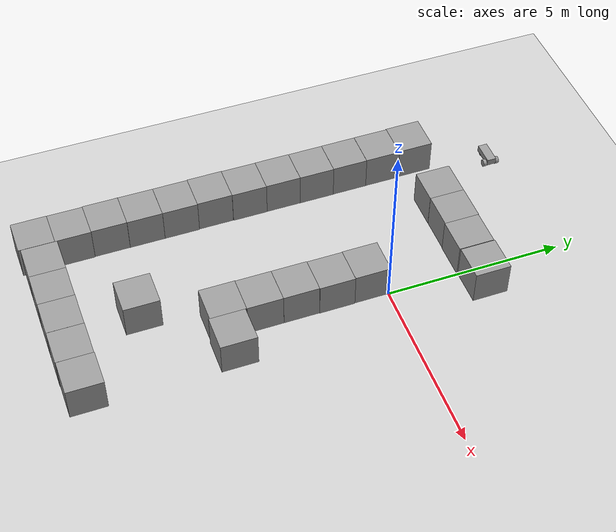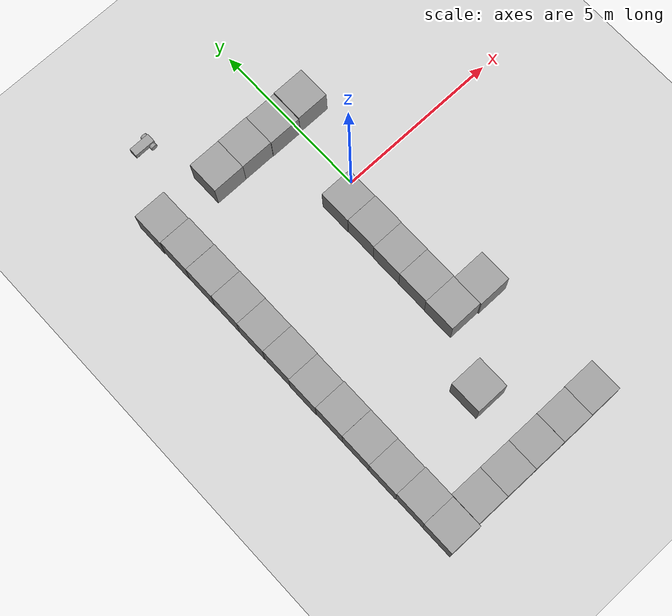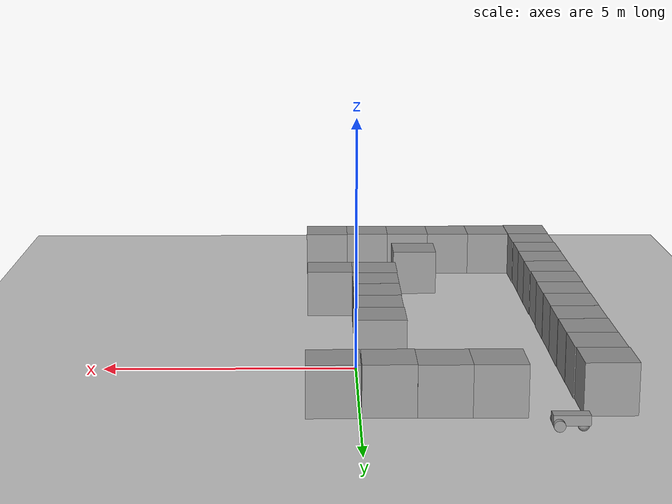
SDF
<sdf version="1.6">
 <world name="default">
  <model name="ground_plane">
   <static>1</static>
   <link name="link">
    <collision name="collision">
     <geometry><plane><normal>0 0 1</normal><size>100 100</size></plane></geometry>
     <surface>
      <contact><collide_bitmask>65535</collide_bitmask></contact>
      <friction><ode><mu>100</mu><mu2>50</mu2></ode></friction>
     </surface>
    </collision>
    <visual name="visual">
     <cast_shadows>0</cast_shadows>
     <geometry><plane><normal>0 0 1</normal><size>100 100</size></plane></geometry>
     <material>
      <script><uri>file://media/materials/scripts/gazebo.material</uri><name>Gazebo/Grey</name></script>
     </material>
    </visual>
   </link>
  </model>
  <model name="unit_box">
   <pose>-0.514009 -0.468031 0.499995 1e-05 -0 0.000845</pose>
   <link name="link">
    <inertial>
     <mass>1</mass>
     <inertia>
      <ixx>0.166667</ixx>
      <ixy>0</ixy>
      <ixz>0</ixz>
      <iyy>0.166667</iyy>
      <iyz>0</iyz>
      <izz>0.166667</izz>
     </inertia>
    </inertial>
    <collision name="collision"><geometry><box><size>1 1 1</size></box></geometry></collision>
    <visual name="visual">
     <geometry><box><size>1 1 1</size></box></geometry>
     <material>
      <script><name>Gazebo/Grey</name><uri>file://media/materials/scripts/gazebo.material</uri></script>
     </material>
    </visual>
   </link>
  </model>
  <model name="unit_box_0">
   <pose>-0.501649 -1.46826 0.499995 1e-05 -0 0.000484</pose>
   <link name="link">
    <inertial>
     <mass>1</mass>
     <inertia>
      <ixx>0.166667</ixx>
      <ixy>0</ixy>
      <ixz>0</ixz>
      <iyy>0.166667</iyy>
      <iyz>0</iyz>
      <izz>0.166667</izz>
     </inertia>
    </inertial>
    <collision name="collision"><geometry><box><size>1 1 1</size></box></geometry></collision>
    <visual name="visual">
     <geometry><box><size>1 1 1</size></box></geometry>
     <material>
      <script><name>Gazebo/Grey</name><uri>file://media/materials/scripts/gazebo.material</uri></script>
     </material>
    </visual>
   </link>
  </model>
  <model name="unit_box_1">
   <pose>-0.513723 -2.46828 0.499995 0 1e-05 0.000475</pose>
   <link name="link">
    <inertial>
     <mass>1</mass>
     <inertia>
      <ixx>0.166667</ixx>
      <ixy>0</ixy>
      <ixz>0</ixz>
      <iyy>0.166667</iyy>
      <iyz>0</iyz>
      <izz>0.166667</izz>
     </inertia>
    </inertial>
    <collision name="collision"><geometry><box><size>1 1 1</size></box></geometry></collision>
    <visual name="visual">
     <geometry><box><size>1 1 1</size></box></geometry>
     <material>
      <script><name>Gazebo/Grey</name><uri>file://media/materials/scripts/gazebo.material</uri></script>
     </material>
    </visual>
   </link>
  </model>
  <model name="unit_box_2">
   <pose>-0.514014 -3.46855 0.499995 -0 1e-05 0.000243</pose>
   <link name="link">
    <inertial>
     <mass>1</mass>
     <inertia>
      <ixx>0.166667</ixx>
      <ixy>0</ixy>
      <ixz>0</ixz>
      <iyy>0.166667</iyy>
      <iyz>0</iyz>
      <izz>0.166667</izz>
     </inertia>
    </inertial>
    <collision name="collision"><geometry><box><size>1 1 1</size></box></geometry></collision>
    <visual name="visual">
     <geometry><box><size>1 1 1</size></box></geometry>
     <material>
      <script><name>Gazebo/Grey</name><uri>file://media/materials/scripts/gazebo.material</uri></script>
     </material>
    </visual>
   </link>
  </model>
  <model name="unit_box_3">
   <pose>-0.5251 -4.46859 0.499995 0 1e-05 0.000164</pose>
   <link name="link">
    <inertial>
     <mass>1</mass>
     <inertia>
      <ixx>0.166667</ixx>
      <ixy>0</ixy>
      <ixz>0</ixz>
      <iyy>0.166667</iyy>
      <iyz>0</iyz>
      <izz>0.166667</izz>
     </inertia>
    </inertial>
    <collision name="collision"><geometry><box><size>1 1 1</size></box></geometry></collision>
    <visual name="visual">
     <geometry><box><size>1 1 1</size></box></geometry>
     <material>
      <script><name>Gazebo/Grey</name><uri>file://media/materials/scripts/gazebo.material</uri></script>
     </material>
    </visual>
   </link>
  </model>
  <model name="unit_box_11">
   <pose>0.516335 -8.49479 0.499995 0 1e-05 -0.000625</pose>
   <link name="link">
    <inertial>
     <mass>1</mass>
     <inertia>
      <ixx>0.166667</ixx>
      <ixy>0</ixy>
      <ixz>0</ixz>
      <iyy>0.166667</iyy>
      <iyz>0</iyz>
      <izz>0.166667</izz>
     </inertia>
    </inertial>
    <collision name="collision"><geometry><box><size>1 1 1</size></box></geometry></collision>
    <visual name="visual">
     <geometry><box><size>1 1 1</size></box></geometry>
     <material>
      <script><name>Gazebo/Grey</name><uri>file://media/materials/scripts/gazebo.material</uri></script>
     </material>
    </visual>
   </link>
  </model>
  <model name="unit_box_12">
   <pose>-0.483823 -8.50416 0.499985 0 -5e-06 -0.000899</pose>
   <link name="link">
    <inertial>
     <mass>1</mass>
     <inertia>
      <ixx>0.166667</ixx>
      <ixy>0</ixy>
      <ixz>0</ixz>
      <iyy>0.166667</iyy>
      <iyz>0</iyz>
      <izz>0.166667</izz>
     </inertia>
    </inertial>
    <collision name="collision"><geometry><box><size>1 1 1</size></box></geometry></collision>
    <visual name="visual">
     <geometry><box><size>1 1 1</size></box></geometry>
     <material>
      <script><name>Gazebo/Grey</name><uri>file://media/materials/scripts/gazebo.material</uri></script>
     </material>
    </visual>
   </link>
  </model>
  <model name="unit_box_13">
   <pose>-1.48461 -8.50511 0.499995 1e-05 -0 -0.002459</pose>
   <link name="link">
    <inertial>
     <mass>1</mass>
     <inertia>
      <ixx>0.166667</ixx>
      <ixy>0</ixy>
      <ixz>0</ixz>
      <iyy>0.166667</iyy>
      <iyz>0</iyz>
      <izz>0.166667</izz>
     </inertia>
    </inertial>
    <collision name="collision"><geometry><box><size>1 1 1</size></box></geometry></collision>
    <visual name="visual">
     <geometry><box><size>1 1 1</size></box></geometry>
     <material>
      <script><name>Gazebo/Grey</name><uri>file://media/materials/scripts/gazebo.material</uri></script>
     </material>
    </visual>
   </link>
  </model>
  <model name="unit_box_14">
   <pose>-2.48462 -8.50514 0.49999 0 -0 -0.002459</pose>
   <link name="link">
    <inertial>
     <mass>1</mass>
     <inertia>
      <ixx>0.166667</ixx>
      <ixy>0</ixy>
      <ixz>0</ixz>
      <iyy>0.166667</iyy>
      <iyz>0</iyz>
      <izz>0.166667</izz>
     </inertia>
    </inertial>
    <collision name="collision"><geometry><box><size>1 1 1</size></box></geometry></collision>
    <visual name="visual">
     <geometry><box><size>1 1 1</size></box></geometry>
     <material>
      <script><name>Gazebo/Grey</name><uri>file://media/materials/scripts/gazebo.material</uri></script>
     </material>
    </visual>
   </link>
  </model>
  <model name="unit_box_15">
   <pose>-3.48462 -8.50266 0.499995 0 -9e-06 -0.002459</pose>
   <link name="link">
    <inertial>
     <mass>1</mass>
     <inertia>
      <ixx>0.166667</ixx>
      <ixy>0</ixy>
      <ixz>0</ixz>
      <iyy>0.166667</iyy>
      <iyz>0</iyz>
      <izz>0.166667</izz>
     </inertia>
    </inertial>
    <collision name="collision"><geometry><box><size>1 1 1</size></box></geometry></collision>
    <visual name="visual">
     <geometry><box><size>1 1 1</size></box></geometry>
     <material>
      <script><name>Gazebo/Grey</name><uri>file://media/materials/scripts/gazebo.material</uri></script>
     </material>
    </visual>
   </link>
  </model>
  <model name="unit_box_16">
   <pose>-4.48864 -8.56824 0.5 0 -0 0.000511</pose>
   <link name="link">
    <inertial>
     <mass>1</mass>
     <inertia>
      <ixx>0.166667</ixx>
      <ixy>0</ixy>
      <ixz>0</ixz>
      <iyy>0.166667</iyy>
      <iyz>0</iyz>
      <izz>0.166667</izz>
     </inertia>
    </inertial>
    <collision name="collision"><geometry><box><size>1 1 1</size></box></geometry></collision>
    <visual name="visual">
     <geometry><box><size>1 1 1</size></box></geometry>
     <material>
      <script><name>Gazebo/Grey</name><uri>file://media/materials/scripts/gazebo.material</uri></script>
     </material>
    </visual>
   </link>
  </model>
  <model name="unit_box_17">
   <pose>-4.48359 -7.56803 0.499995 0 1e-05 9.7e-05</pose>
   <link name="link">
    <inertial>
     <mass>1</mass>
     <inertia>
      <ixx>0.166667</ixx>
      <ixy>0</ixy>
      <ixz>0</ixz>
      <iyy>0.166667</iyy>
      <iyz>0</iyz>
      <izz>0.166667</izz>
     </inertia>
    </inertial>
    <collision name="collision"><geometry><box><size>1 1 1</size></box></geometry></collision>
    <visual name="visual">
     <geometry><box><size>1 1 1</size></box></geometry>
     <material>
      <script><name>Gazebo/Grey</name><uri>file://media/materials/scripts/gazebo.material</uri></script>
     </material>
    </visual>
   </link>
  </model>
  <model name="unit_box_18">
   <pose>-4.49915 -6.568 0.5 -1e-06 -0 0.000158</pose>
   <link name="link">
    <inertial>
     <mass>1</mass>
     <inertia>
      <ixx>0.166667</ixx>
      <ixy>0</ixy>
      <ixz>0</ixz>
      <iyy>0.166667</iyy>
      <iyz>0</iyz>
      <izz>0.166667</izz>
     </inertia>
    </inertial>
    <collision name="collision"><geometry><box><size>1 1 1</size></box></geometry></collision>
    <visual name="visual">
     <geometry><box><size>1 1 1</size></box></geometry>
     <material>
      <script><name>Gazebo/Grey</name><uri>file://media/materials/scripts/gazebo.material</uri></script>
     </material>
    </visual>
   </link>
  </model>
  <model name="unit_box_19">
   <pose>-4.49513 -5.568 0.5 0 -0 0.00016</pose>
   <link name="link">
    <inertial>
     <mass>1</mass>
     <inertia>
      <ixx>0.166667</ixx>
      <ixy>0</ixy>
      <ixz>0</ixz>
      <iyy>0.166667</iyy>
      <iyz>0</iyz>
      <izz>0.166667</izz>
     </inertia>
    </inertial>
    <collision name="collision"><geometry><box><size>1 1 1</size></box></geometry></collision>
    <visual name="visual">
     <geometry><box><size>1 1 1</size></box></geometry>
     <material>
      <script><name>Gazebo/Grey</name><uri>file://media/materials/scripts/gazebo.material</uri></script>
     </material>
    </visual>
   </link>
  </model>
  <model name="unit_box_20">
   <pose>-4.49481 -4.5678 0.499995 -1e-05 -0 -0.000205</pose>
   <link name="link">
    <inertial>
     <mass>1</mass>
     <inertia>
      <ixx>0.166667</ixx>
      <ixy>0</ixy>
      <ixz>0</ixz>
      <iyy>0.166667</iyy>
      <iyz>0</iyz>
      <izz>0.166667</izz>
     </inertia>
    </inertial>
    <collision name="collision"><geometry><box><size>1 1 1</size></box></geometry></collision>
    <visual name="visual">
     <geometry><box><size>1 1 1</size></box></geometry>
     <material>
      <script><name>Gazebo/Grey</name><uri>file://media/materials/scripts/gazebo.material</uri></script>
     </material>
    </visual>
   </link>
  </model>
  <model name="unit_box_21">
   <pose>-4.50995 -3.56779 0.499995 0 -1e-05 -0.000195</pose>
   <link name="link">
    <inertial>
     <mass>1</mass>
     <inertia>
      <ixx>0.166667</ixx>
      <ixy>0</ixy>
      <ixz>0</ixz>
      <iyy>0.166667</iyy>
      <iyz>0</iyz>
      <izz>0.166667</izz>
     </inertia>
    </inertial>
    <collision name="collision"><geometry><box><size>1 1 1</size></box></geometry></collision>
    <visual name="visual">
     <geometry><box><size>1 1 1</size></box></geometry>
     <material>
      <script><name>Gazebo/Grey</name><uri>file://media/materials/scripts/gazebo.material</uri></script>
     </material>
    </visual>
   </link>
  </model>
  <model name="unit_box_22">
   <pose>-4.49969 -2.56779 0.499995 0 -1e-05 -0.000195</pose>
   <link name="link">
    <inertial>
     <mass>1</mass>
     <inertia>
      <ixx>0.166667</ixx>
      <ixy>0</ixy>
      <ixz>0</ixz>
      <iyy>0.166667</iyy>
      <iyz>0</iyz>
      <izz>0.166667</izz>
     </inertia>
    </inertial>
    <collision name="collision"><geometry><box><size>1 1 1</size></box></geometry></collision>
    <visual name="visual">
     <geometry><box><size>1 1 1</size></box></geometry>
     <material>
      <script><name>Gazebo/Grey</name><uri>file://media/materials/scripts/gazebo.material</uri></script>
     </material>
    </visual>
   </link>
  </model>
  <model name="unit_box_23">
   <pose>-4.50502 -1.56778 0.499995 1e-05 -0 -0.000206</pose>
   <link name="link">
    <inertial>
     <mass>1</mass>
     <inertia>
      <ixx>0.166667</ixx>
      <ixy>0</ixy>
      <ixz>0</ixz>
      <iyy>0.166667</iyy>
      <iyz>0</iyz>
      <izz>0.166667</izz>
     </inertia>
    </inertial>
    <collision name="collision"><geometry><box><size>1 1 1</size></box></geometry></collision>
    <visual name="visual">
     <geometry><box><size>1 1 1</size></box></geometry>
     <material>
      <script><name>Gazebo/Grey</name><uri>file://media/materials/scripts/gazebo.material</uri></script>
     </material>
    </visual>
   </link>
  </model>
  <model name="unit_box_24">
   <pose>-4.50152 -0.567669 0.499995 0 1e-05 -0.000205</pose>
   <link name="link">
    <inertial>
     <mass>1</mass>
     <inertia>
      <ixx>0.166667</ixx>
      <ixy>0</ixy>
      <ixz>0</ixz>
      <iyy>0.166667</iyy>
      <iyz>0</iyz>
      <izz>0.166667</izz>
     </inertia>
    </inertial>
    <collision name="collision"><geometry><box><size>1 1 1</size></box></geometry></collision>
    <visual name="visual">
     <geometry><box><size>1 1 1</size></box></geometry>
     <material>
      <script><name>Gazebo/Grey</name><uri>file://media/materials/scripts/gazebo.material</uri></script>
     </material>
    </visual>
   </link>
  </model>
  <model name="unit_box_25">
   <pose>-4.50791 0.43257 0.499995 1e-05 -0 -0.000205</pose>
   <link name="link">
    <inertial>
     <mass>1</mass>
     <inertia>
      <ixx>0.166667</ixx>
      <ixy>0</ixy>
      <ixz>0</ixz>
      <iyy>0.166667</iyy>
      <iyz>0</iyz>
      <izz>0.166667</izz>
     </inertia>
    </inertial>
    <collision name="collision"><geometry><box><size>1 1 1</size></box></geometry></collision>
    <visual name="visual">
     <geometry><box><size>1 1 1</size></box></geometry>
     <material>
      <script><name>Gazebo/Grey</name><uri>file://media/materials/scripts/gazebo.material</uri></script>
     </material>
    </visual>
   </link>
  </model>
  <model name="unit_box_26">
   <pose>-4.51304 1.43325 0.499995 0 -1e-05 -0.000311</pose>
   <link name="link">
    <inertial>
     <mass>1</mass>
     <inertia>
      <ixx>0.166667</ixx>
      <ixy>0</ixy>
      <ixz>0</ixz>
      <iyy>0.166667</iyy>
      <iyz>0</iyz>
      <izz>0.166667</izz>
     </inertia>
    </inertial>
    <collision name="collision"><geometry><box><size>1 1 1</size></box></geometry></collision>
    <visual name="visual">
     <geometry><box><size>1 1 1</size></box></geometry>
     <material>
      <script><name>Gazebo/Grey</name><uri>file://media/materials/scripts/gazebo.material</uri></script>
     </material>
    </visual>
   </link>
  </model>
  <model name="unit_box_27">
   <pose>-4.532 2.43349 0.499995 1e-05 -0 -0.000376</pose>
   <link name="link">
    <inertial>
     <mass>1</mass>
     <inertia>
      <ixx>0.166667</ixx>
      <ixy>0</ixy>
      <ixz>0</ixz>
      <iyy>0.166667</iyy>
      <iyz>0</iyz>
      <izz>0.166667</izz>
     </inertia>
    </inertial>
    <collision name="collision"><geometry><box><size>1 1 1</size></box></geometry></collision>
    <visual name="visual">
     <geometry><box><size>1 1 1</size></box></geometry>
     <material>
      <script><name>Gazebo/Grey</name><uri>file://media/materials/scripts/gazebo.material</uri></script>
     </material>
    </visual>
   </link>
  </model>
  <model name="unit_box_29">
   <pose>-2.53117 2.52807 0.499995 0 -1e-05 -0.000548</pose>
   <link name="link">
    <inertial>
     <mass>1</mass>
     <inertia>
      <ixx>0.166667</ixx>
      <ixy>0</ixy>
      <ixz>0</ixz>
      <iyy>0.166667</iyy>
      <iyz>0</iyz>
      <izz>0.166667</izz>
     </inertia>
    </inertial>
    <collision name="collision"><geometry><box><size>1 1 1</size></box></geometry></collision>
    <visual name="visual">
     <geometry><box><size>1 1 1</size></box></geometry>
     <material>
      <script><name>Gazebo/Grey</name><uri>file://media/materials/scripts/gazebo.material</uri></script>
     </material>
    </visual>
   </link>
  </model>
  <model name="unit_box_30">
   <pose>-1.5311 2.53052 0.499995 0 1e-05 -0.000495</pose>
   <link name="link">
    <inertial>
     <mass>1</mass>
     <inertia>
      <ixx>0.166667</ixx>
      <ixy>0</ixy>
      <ixz>0</ixz>
      <iyy>0.166667</iyy>
      <iyz>0</iyz>
      <izz>0.166667</izz>
     </inertia>
    </inertial>
    <collision name="collision"><geometry><box><size>1 1 1</size></box></geometry></collision>
    <visual name="visual">
     <geometry><box><size>1 1 1</size></box></geometry>
     <material>
      <script><name>Gazebo/Grey</name><uri>file://media/materials/scripts/gazebo.material</uri></script>
     </material>
    </visual>
   </link>
  </model>
  <model name="unit_box_31">
   <pose>-0.531096 2.51781 0.5 -0 -0 -0.000463</pose>
   <link name="link">
    <inertial>
     <mass>1</mass>
     <inertia>
      <ixx>0.166667</ixx>
      <ixy>0</ixy>
      <ixz>0</ixz>
      <iyy>0.166667</iyy>
      <iyz>0</iyz>
      <izz>0.166667</izz>
     </inertia>
    </inertial>
    <collision name="collision"><geometry><box><size>1 1 1</size></box></geometry></collision>
    <visual name="visual">
     <geometry><box><size>1 1 1</size></box></geometry>
     <material>
      <script><name>Gazebo/Grey</name><uri>file://media/materials/scripts/gazebo.material</uri></script>
     </material>
    </visual>
   </link>
  </model>
  <model name="unit_box_32">
   <pose>0.486136 2.53809 0.499995 0 1e-05 0.00063</pose>
   <link name="link">
    <inertial>
     <mass>1</mass>
     <inertia>
      <ixx>0.166667</ixx>
      <ixy>0</ixy>
      <ixz>0</ixz>
      <iyy>0.166667</iyy>
      <iyz>0</iyz>
      <izz>0.166667</izz>
     </inertia>
    </inertial>
    <collision name="collision"><geometry><box><size>1 1 1</size></box></geometry></collision>
    <visual name="visual">
     <geometry><box><size>1 1 1</size></box></geometry>
     <material>
      <script><name>Gazebo/Grey</name><uri>file://media/materials/scripts/gazebo.material</uri></script>
     </material>
    </visual>
   </link>
  </model>
  <model name="unit_box_54">
   <pose>0.474939 -4.50125 0.5 0 -0 9.9e-05</pose>
   <link name="link">
    <inertial>
     <mass>1</mass>
     <inertia>
      <ixx>0.166667</ixx>
      <ixy>0</ixy>
      <ixz>0</ixz>
      <iyy>0.166667</iyy>
      <iyz>0</iyz>
      <izz>0.166667</izz>
     </inertia>
    </inertial>
    <collision name="collision"><geometry><box><size>1 1 1</size></box></geometry></collision>
    <visual name="visual">
     <geometry><box><size>1 1 1</size></box></geometry>
     <material>
      <script><name>Gazebo/Grey</name><uri>file://media/materials/scripts/gazebo.material</uri></script>
     </material>
    </visual>
   </link>
  </model>
  <model name="unit_box_68">
   <pose>-1.53682 -6.48161 0.499995 -1e-05 -0 -0</pose>
   <link name="link">
    <inertial>
     <mass>1</mass>
     <inertia>
      <ixx>0.166667</ixx>
      <ixy>0</ixy>
      <ixz>0</ixz>
      <iyy>0.166667</iyy>
      <iyz>0</iyz>
      <izz>0.166667</izz>
     </inertia>
    </inertial>
    <collision name="collision"><geometry><box><size>1 1 1</size></box></geometry></collision>
    <visual name="visual">
     <geometry><box><size>1 1 1</size></box></geometry>
     <material>
      <script><name>Gazebo/Grey</name><uri>file://media/materials/scripts/gazebo.material</uri></script>
     </material>
    </visual>
   </link>
  </model>
  <model name="My_Robot">
   <link name="link_0">
    <inertial>
     <mass>0.0310139</mass>
     <inertia>
      <ixx>0.000265072</ixx>
      <ixy>0</ixy>
      <ixz>0</ixz>
      <iyy>0.00115526</iyy>
      <iyz>0</iyz>
      <izz>0.00124497</izz>
     </inertia>
    </inertial>
    <pose>-0.055628 0.003849 0.092662 0 -0 0</pose>
    <visual name="visual">
     <geometry><box><size>0.642707 0.261987 0.184189</size></box></geometry>
     <material>
      <lighting>1</lighting>
      <script><uri>file://media/materials/scripts/gazebo.material</uri><name>Gazebo/Grey</name></script>
      <emissive>0 0 0 1</emissive>
     </material>
    </visual>
    <collision name="collision">
     <geometry><box><size>0.642707 0.261987 0.184189</size></box></geometry>
     <surface>
      <friction>
       <ode><mu>1</mu><mu2>1</mu2><fdir1>0 0 0</fdir1><slip1>0</slip1><slip2>0</slip2></ode>
       <torsional>
        <coefficient>1</coefficient>
        <patch_radius>0</patch_radius>
        <surface_radius>0</surface_radius>
        <use_patch_radius>1</use_patch_radius>
        <ode><slip>0</slip></ode>
       </torsional>
      </friction>
      <bounce><restitution_coefficient>0</restitution_coefficient><threshold>1e+06</threshold></bounce>
      <contact>
       <collide_without_contact>0</collide_without_contact>
       <collide_without_contact_bitmask>1</collide_without_contact_bitmask>
       <collide_bitmask>1</collide_bitmask>
       <ode>
        <soft_cfm>0</soft_cfm>
        <soft_erp>0.2</soft_erp>
        <kp>1e+13</kp>
        <kd>1</kd>
        <max_vel>0.01</max_vel>
        <min_depth>0</min_depth>
       </ode>
       <bullet>
        <split_impulse>1</split_impulse>
        <split_impulse_penetration_threshold>-0.01</split_impulse_penetration_threshold>
        <soft_cfm>0</soft_cfm>
        <soft_erp>0.2</soft_erp>
        <kp>1e+13</kp>
        <kd>1</kd>
       </bullet>
      </contact>
     </surface>
    </collision>
   </link>
   <link name="link_1_clone">
    <inertial>
     <mass>1</mass>
     <inertia><ixx>0.145833</ixx><ixy>0</ixy><ixz>0</ixz><iyy>0.145833</iyy><iyz>0</iyz><izz>0.125</izz></inertia>
    </inertial>
    <pose>0.165726 -0.177154 0.023385 1.5707 -0 0</pose>
    <visual name="visual">
     <geometry><cylinder><radius>0.1</radius><length>0.1</length></cylinder></geometry>
     <material>
      <lighting>1</lighting>
      <script><uri>file://media/materials/scripts/gazebo.material</uri><name>Gazebo/Grey</name></script>
      <shader type="vertex"><normal_map>__default__</normal_map></shader>
      <ambient>0.3 0.3 0.3 1</ambient>
      <diffuse>0.7 0.7 0.7 1</diffuse>
      <specular>0.01 0.01 0.01 1</specular>
      <emissive>0 0 0 1</emissive>
     </material>
    </visual>
    <collision name="collision">
     <geometry><cylinder><radius>0.1</radius><length>0.1</length></cylinder></geometry>
     <surface>
      <friction>
       <ode><mu>1</mu><mu2>1</mu2><fdir1>0 0 0</fdir1><slip1>0</slip1><slip2>0</slip2></ode>
       <torsional>
        <coefficient>1</coefficient>
        <patch_radius>0</patch_radius>
        <surface_radius>0</surface_radius>
        <use_patch_radius>1</use_patch_radius>
        <ode><slip>0</slip></ode>
       </torsional>
      </friction>
      <bounce><restitution_coefficient>0</restitution_coefficient><threshold>1e+06</threshold></bounce>
      <contact>
       <collide_without_contact>0</collide_without_contact>
       <collide_without_contact_bitmask>1</collide_without_contact_bitmask>
       <collide_bitmask>1</collide_bitmask>
       <ode>
        <soft_cfm>0</soft_cfm>
        <soft_erp>0.2</soft_erp>
        <kp>1e+13</kp>
        <kd>1</kd>
        <max_vel>0.01</max_vel>
        <min_depth>0</min_depth>
       </ode>
       <bullet>
        <split_impulse>1</split_impulse>
        <split_impulse_penetration_threshold>-0.01</split_impulse_penetration_threshold>
        <soft_cfm>0</soft_cfm>
        <soft_erp>0.2</soft_erp>
        <kp>1e+13</kp>
        <kd>1</kd>
       </bullet>
      </contact>
     </surface>
    </collision>
   </link>
   <link name="link_1_clone_clone">
    <inertial>
     <mass>1.02007</mass>
     <inertia>
      <ixx>0.00345179</ixx>
      <ixy>0</ixy>
      <ixz>0</ixz>
      <iyy>0.00345179</iyy>
      <iyz>0</iyz>
      <izz>0.00520346</izz>
     </inertia>
    </inertial>
    <pose>0.166887 0.184952 0.023385 1.5707 -0 0</pose>
    <visual name="visual">
     <geometry><cylinder><radius>0.101006</radius><length>0.1</length></cylinder></geometry>
     <material>
      <lighting>1</lighting>
      <script><uri>file://media/materials/scripts/gazebo.material</uri><name>Gazebo/Grey</name></script>
      <shader type="vertex"><normal_map>__default__</normal_map></shader>
      <ambient>0.3 0.3 0.3 1</ambient>
      <diffuse>0.7 0.7 0.7 1</diffuse>
      <specular>0.01 0.01 0.01 1</specular>
      <emissive>0 0 0 1</emissive>
     </material>
    </visual>
    <collision name="collision">
     <geometry><cylinder><radius>0.101006</radius><length>0.1</length></cylinder></geometry>
     <surface>
      <friction>
       <ode><mu>1</mu><mu2>1</mu2><fdir1>0 0 0</fdir1><slip1>0</slip1><slip2>0</slip2></ode>
       <torsional>
        <coefficient>1</coefficient>
        <patch_radius>0</patch_radius>
        <surface_radius>0</surface_radius>
        <use_patch_radius>1</use_patch_radius>
        <ode><slip>0</slip></ode>
       </torsional>
      </friction>
      <bounce><restitution_coefficient>0</restitution_coefficient><threshold>1e+06</threshold></bounce>
      <contact>
       <collide_without_contact>0</collide_without_contact>
       <collide_without_contact_bitmask>1</collide_without_contact_bitmask>
       <collide_bitmask>1</collide_bitmask>
       <ode>
        <soft_cfm>0</soft_cfm>
        <soft_erp>0.2</soft_erp>
        <kp>1e+13</kp>
        <kd>1</kd>
        <max_vel>0.01</max_vel>
        <min_depth>0</min_depth>
       </ode>
       <bullet>
        <split_impulse>1</split_impulse>
        <split_impulse_penetration_threshold>-0.01</split_impulse_penetration_threshold>
        <soft_cfm>0</soft_cfm>
        <soft_erp>0.2</soft_erp>
        <kp>1e+13</kp>
        <kd>1</kd>
       </bullet>
      </contact>
     </surface>
    </collision>
   </link>
   <link name="link_2">
    <inertial>
     <mass>1</mass>
     <inertia><ixx>0.1</ixx><ixy>0</ixy><ixz>0</ixz><iyy>0.1</iyy><iyz>0</iyz><izz>0.1</izz></inertia>
    </inertial>
    <pose>-0.276985 -0.011643 -0.139433 0 -0 0</pose>
    <visual name="visual">
     <pose>0 0 0.1 0 -0 0</pose>
     <geometry><sphere><radius>0.1</radius></sphere></geometry>
     <material>
      <lighting>1</lighting>
      <script><uri>file://media/materials/scripts/gazebo.material</uri><name>Gazebo/Grey</name></script>
      <shader type="vertex"><normal_map>__default__</normal_map></shader>
      <ambient>0.3 0.3 0.3 1</ambient>
      <diffuse>0.7 0.7 0.7 1</diffuse>
      <specular>0.01 0.01 0.01 1</specular>
      <emissive>0 0 0 1</emissive>
     </material>
    </visual>
    <collision name="collision">
     <pose>0 0 0.1 0 -0 0</pose>
     <geometry><sphere><radius>0.1</radius></sphere></geometry>
     <surface>
      <friction>
       <ode><mu>1</mu><mu2>1</mu2><fdir1>0 0 0</fdir1><slip1>0</slip1><slip2>0</slip2></ode>
       <torsional>
        <coefficient>1</coefficient>
        <patch_radius>0</patch_radius>
        <surface_radius>0</surface_radius>
        <use_patch_radius>1</use_patch_radius>
        <ode><slip>0</slip></ode>
       </torsional>
      </friction>
      <bounce><restitution_coefficient>0</restitution_coefficient><threshold>1e+06</threshold></bounce>
      <contact>
       <collide_without_contact>0</collide_without_contact>
       <collide_without_contact_bitmask>1</collide_without_contact_bitmask>
       <collide_bitmask>1</collide_bitmask>
       <ode>
        <soft_cfm>0</soft_cfm>
        <soft_erp>0.2</soft_erp>
        <kp>1e+13</kp>
        <kd>1</kd>
        <max_vel>0.01</max_vel>
        <min_depth>0</min_depth>
       </ode>
       <bullet>
        <split_impulse>1</split_impulse>
        <split_impulse_penetration_threshold>-0.01</split_impulse_penetration_threshold>
        <soft_cfm>0</soft_cfm>
        <soft_erp>0.2</soft_erp>
        <kp>1e+13</kp>
        <kd>1</kd>
       </bullet>
      </contact>
     </surface>
    </collision>
   </link>
   <joint name="link_0_JOINT_2" type="revolute">
    <parent>link_0</parent>
    <child>link_1_clone_clone</child>
    <axis>
     <xyz>0 0 1</xyz>
     <use_parent_model_frame>0</use_parent_model_frame>
     <limit>
      <lower>-1.79769e+308</lower>
      <upper>1.79769e+308</upper>
      <effort>-1</effort>
      <velocity>-1</velocity>
     </limit>
     <dynamics>
      <spring_reference>0</spring_reference>
      <spring_stiffness>0</spring_stiffness>
      <damping>0</damping>
     </dynamics>
    </axis>
    <physics>
     <ode><limit><cfm>0</cfm><erp>0.2</erp></limit><suspension><cfm>0</cfm><erp>0.2</erp></suspension></ode>
    </physics>
   </joint>
   <joint name="link_0_JOINT_4" type="revolute">
    <parent>link_0</parent>
    <child>link_1_clone</child>
    <axis>
     <xyz>0 0 -1</xyz>
     <use_parent_model_frame>0</use_parent_model_frame>
     <limit>
      <lower>-1.79769e+308</lower>
      <upper>1.79769e+308</upper>
      <effort>-1</effort>
      <velocity>-1</velocity>
     </limit>
     <dynamics>
      <spring_reference>0</spring_reference>
      <spring_stiffness>0</spring_stiffness>
      <damping>0</damping>
     </dynamics>
    </axis>
    <physics>
     <ode><limit><cfm>0</cfm><erp>0.2</erp></limit><suspension><cfm>0</cfm><erp>0.2</erp></suspension></ode>
    </physics>
   </joint>
   <joint name="link_0_JOINT_5" type="ball">
    <parent>link_0</parent>
    <child>link_2</child>
    <physics>
     <ode><limit><cfm>0</cfm><erp>0.2</erp></limit><suspension><cfm>0</cfm><erp>0.2</erp></suspension></ode>
    </physics>
   </joint>
   <static>0</static>
   <pose>-3.48319 4.49048 0.407338 0 -0 0</pose>
  </model>
 </world>
</sdf>
